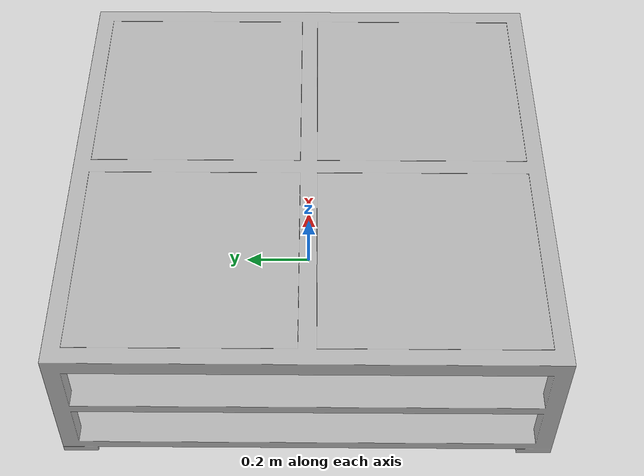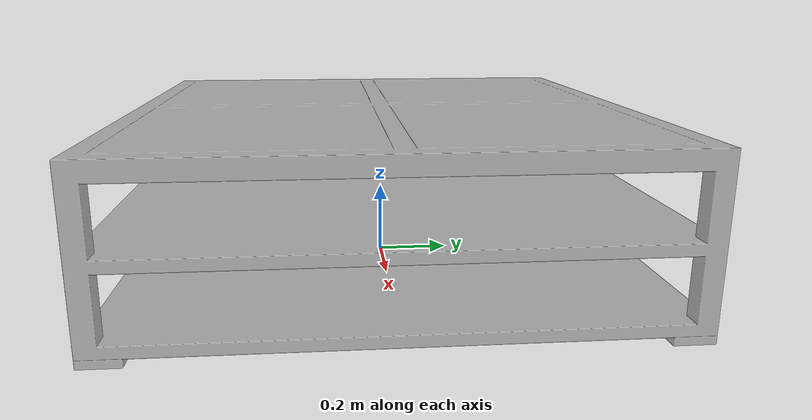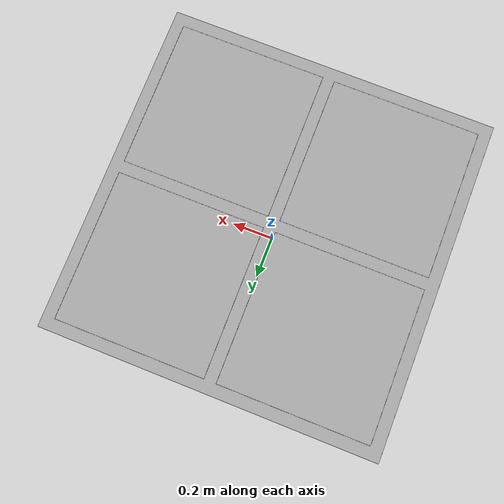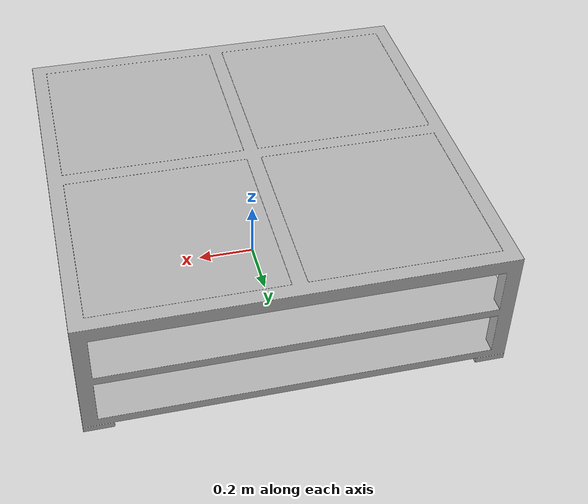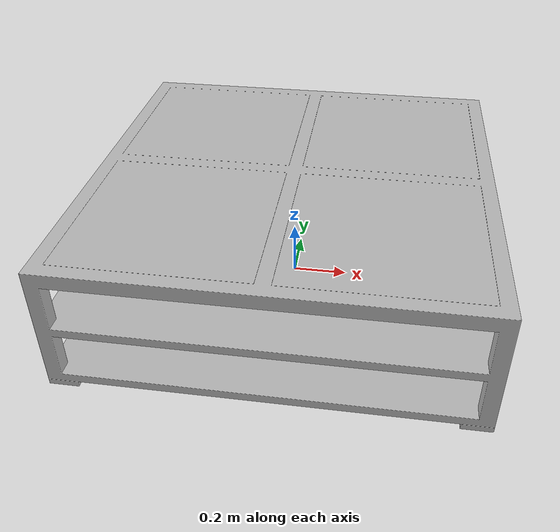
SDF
<?xml version='1.0'?>
<sdf version='1.4'>
  <model name='s__1669'>
    <pose>0 0 0 0 0 0</pose>
    <static>true</static>
    <link name='link'>
      <collision name='collision'>
        <pose>0 0 0 0 0 0</pose>
        <geometry>
          <box>
            <size>1.4 1.4 2</size>
          </box>
        </geometry>
      </collision>
      <visual name='visual'>
        <pose>0 0 0 0 0 0</pose>
        <geometry>
          <mesh><uri>model://s__1669/s__1669.dae</uri></mesh>
        </geometry>
      </visual>
    </link>
  </model>
</sdf>
